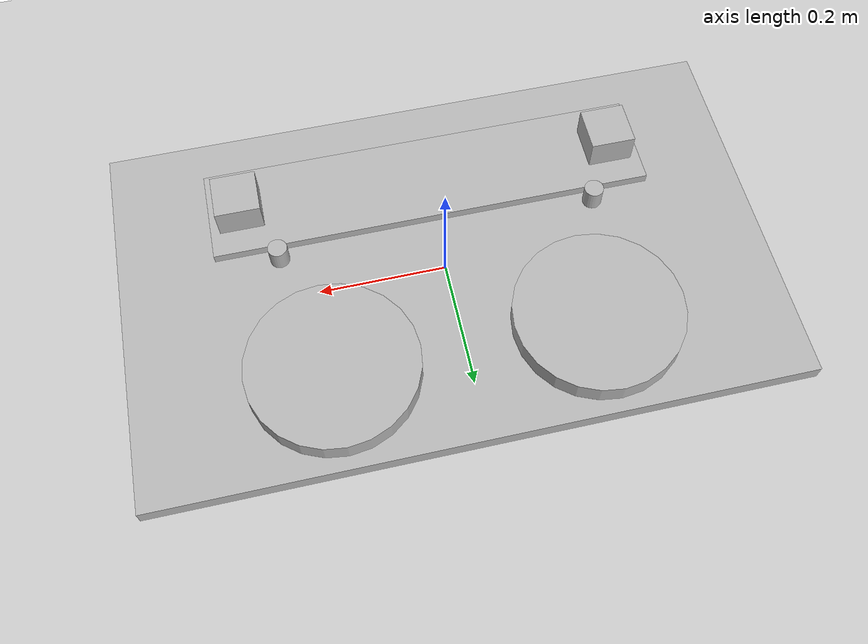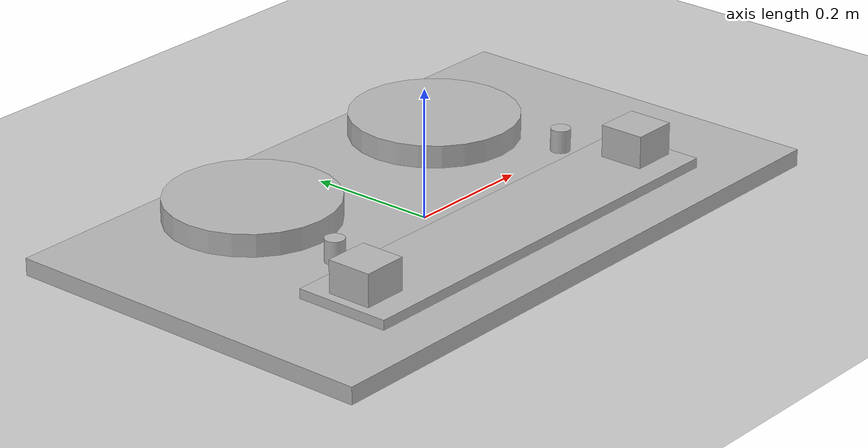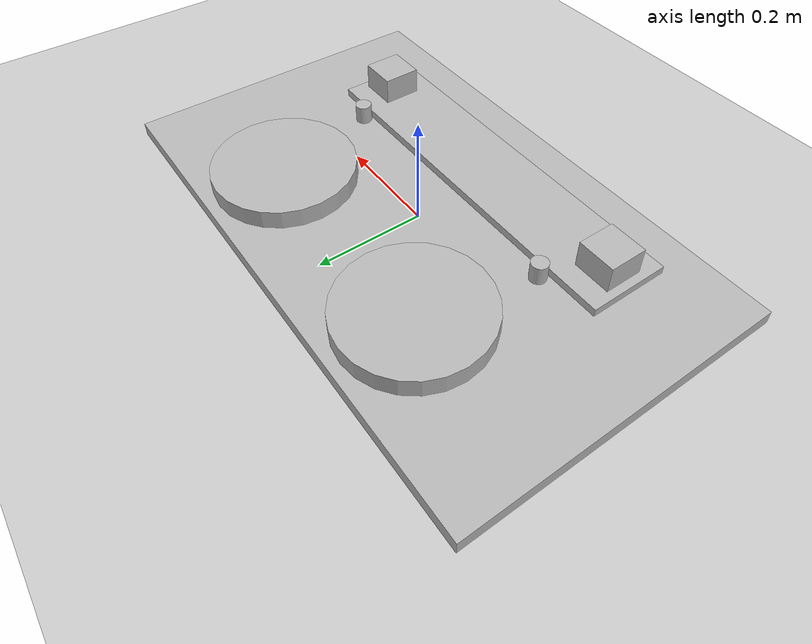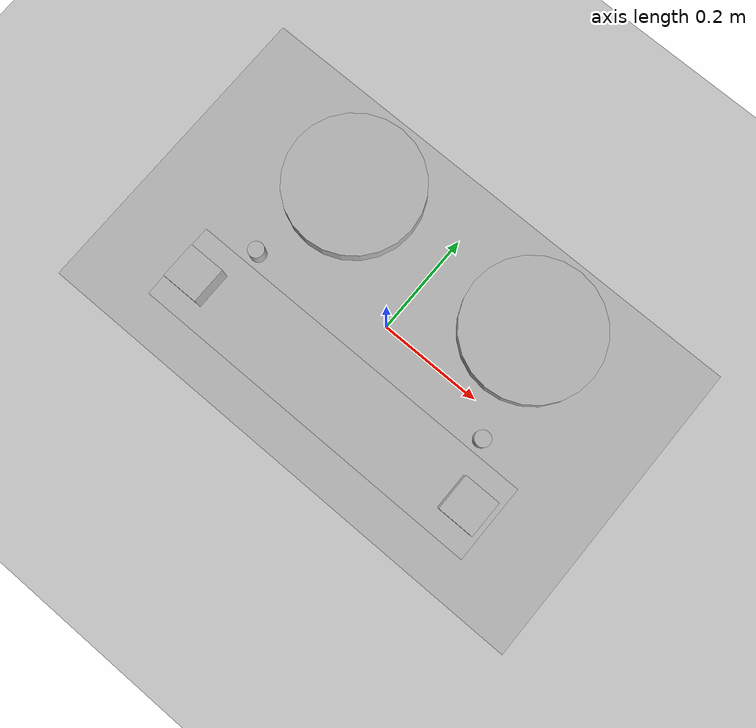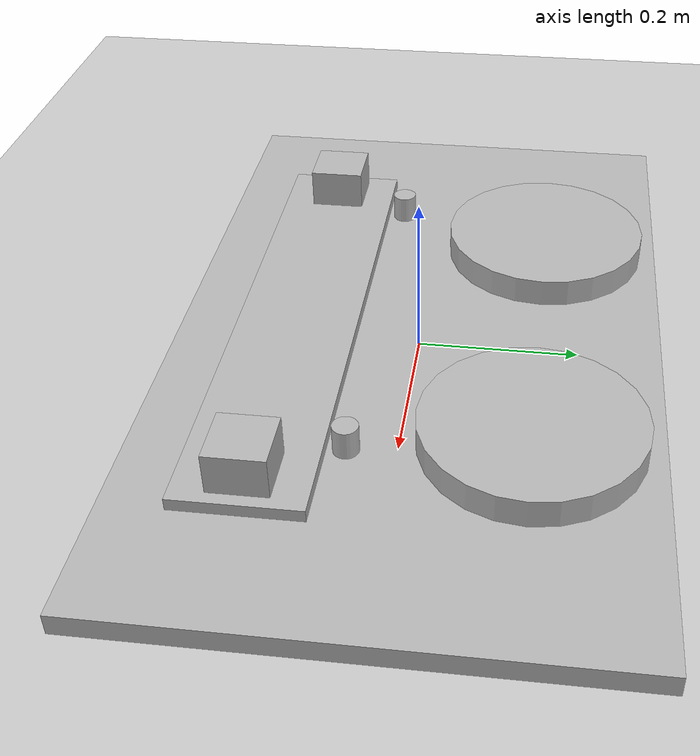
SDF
<?xml version="1.0" ?>
<sdf version="1.6">
  <world name="posha_world">
    <include><uri>model://sun</uri></include>
    <include><uri>model://ground_plane</uri></include>
    <model name="stove_top">
      <pose>0 0 0 0 0 0</pose>
      <link name="stove_link"><visual><geometry><box><size>1.0 0.6 0.05</size></box></geometry></visual></link>
    </model>
    <model name="pan1"><pose>-0.20 0.15 0.03 0 0 0</pose><link><visual><geometry><cylinder><radius>0.13</radius><length>0.06</length></cylinder></geometry></visual></link></model>
    <model name="pan2"><pose>0.20 0.15 0.03 0 0 0</pose><link><visual><geometry><cylinder><radius>0.13</radius><length>0.06</length></cylinder></geometry></visual></link></model>
    <model name="container_tray"><pose>0 -0.15 0.03 0 0 0</pose><link><visual><geometry><box><size>0.7 0.15 0.02</size></box></geometry></visual></link></model>
    <model name="container1"><pose>-0.30 -0.15 0.055 0 0 0</pose><link><visual><geometry><box><size>0.07 0.07 0.07</size></box></geometry></visual></link></model>
    <model name="container5"><pose>0.30 -0.15 0.055 0 0 0</pose><link><visual><geometry><box><size>0.07 0.07 0.07</size></box></geometry></visual></link></model>
    <model name="pod1"><pose>0.25 -0.05 0.055 0 0 0</pose><link><visual><geometry><cylinder><radius>0.015</radius><length>0.035</length></cylinder></geometry></visual></link></model>
    <model name="pod19"><pose>-0.25 -0.05 0.055 0 0 0</pose><link><visual><geometry><cylinder><radius>0.015</radius><length>0.035</length></cylinder></geometry></visual></link></model>
  </world>
</sdf>
